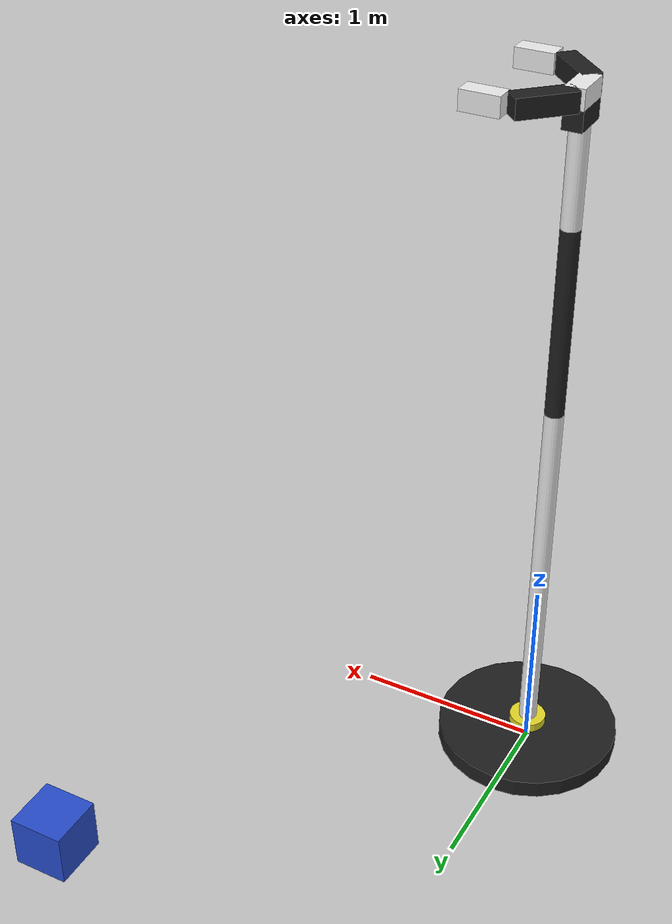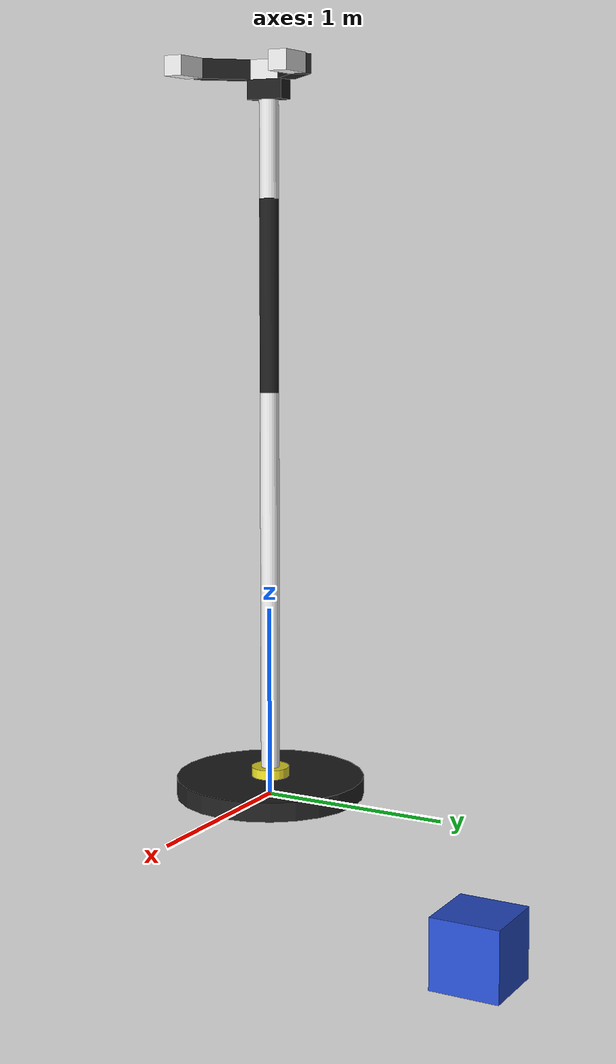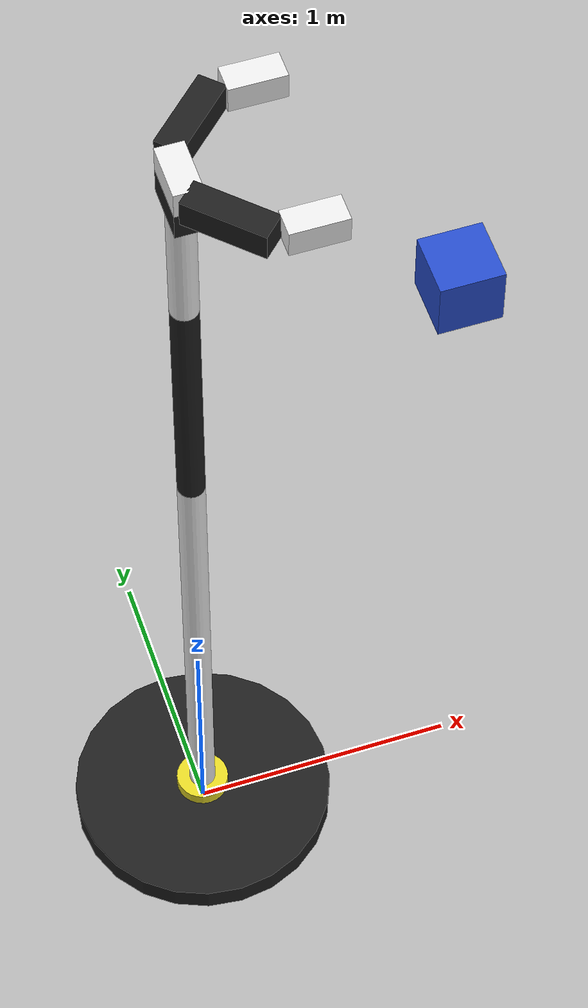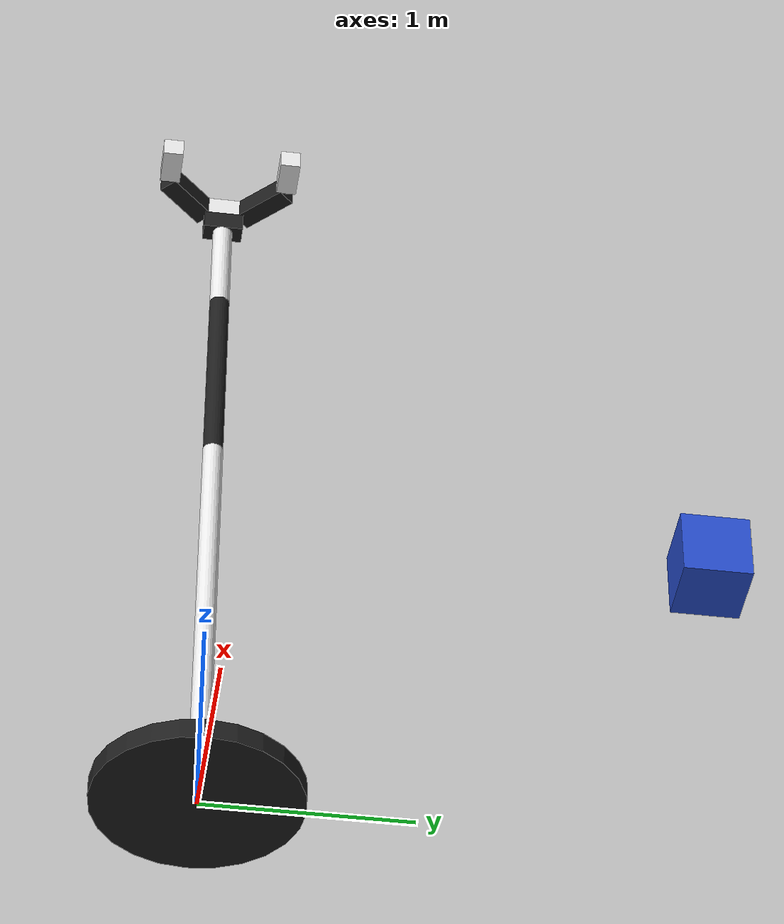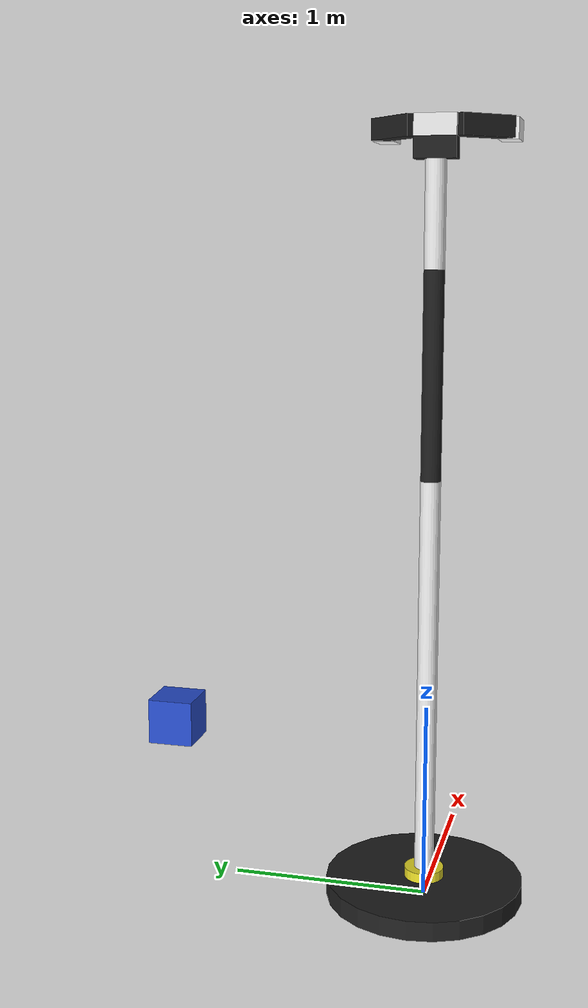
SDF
<?xml version='1.0'?>
<sdf version='1.4'>
    <model name="my_robot">
        <static>false</static>
        <self_collide>1</self_collide>
        <link name='chassis'>
            <pose>0 0 .05 0 0 0</pose>
            <inertial>
            <mass>100.0 </mass>
            </inertial>
            <collision name='collision'>
                <geometry>
                    <cylinder>
                        <radius>.5</radius>
                        <length>.1</length>
                    </cylinder>
                </geometry>
            </collision>

            <visual name='visual'>
                <geometry>
                    <cylinder>
                        <radius>.5</radius>
                        <length>.1</length>
                    </cylinder>
                </geometry>
                <material>
                    <script>
                        <name>
                            Gazebo/Black
                        </name>
                        <uri>file://media/materials/scripts/gazebo.material</uri>
                    </script>
                </material>
            </visual>
        </link>
        <link name='arm1'>
            <pose>0 0 .125 0 0 0</pose>
            <gravity> 0 </gravity>

            <inertial>
            <mass>50 </mass>
            </inertial>
            <collision name='collision'>
                <geometry>
                    <cylinder>
                        <radius>.1</radius>
                        <length>.05</length>
                    </cylinder>
                </geometry>
            </collision>

            <visual name='visual'>
                <geometry>
                    <cylinder>
                        <radius>.1</radius>
                        <length>.05</length>
                    </cylinder>
                </geometry>
                <material>
                    <script>
                        <name>
                            Gazebo/Yellow
                        </name>
                        <uri>file://media/materials/scripts/gazebo.material</uri>
                    </script>
                </material>
            </visual>
        </link>
        <link name='arm2'>
            <pose>0 0 1.15 0 0 0</pose>
           <gravity> 0 </gravity>
            <inertial>
            <mass>20 </mass>

            </inertial>

            <collision name='collision'>
                <geometry>
                    <cylinder>
                        <radius>.05</radius>
                        <length>2.0</length>
                    </cylinder>
                </geometry>
            </collision>

            <visual name='visual'>
                <geometry>
                    <cylinder>
                        <radius>.05</radius>
                        <length>2.0</length>
                    </cylinder>
                </geometry>
                <material>
                    <script>
                        <name>
                            Gazebo/white
                        </name>
                        <uri>file://media/materials/scripts/gazebo.material</uri>
                    </script>
                </material>
            </visual>
        </link>

        <link name='arm3'>
            <pose>0 0 2.65 0 0 0</pose>
            <inertial>
            <mass>1 </mass>
            </inertial>
            <collision name='collision'>
                <geometry>
                    <cylinder>
                        <radius>.05</radius>
                        <length>1.0</length>
                    </cylinder>
                </geometry>
            </collision>

            <visual name='visual'>
                <geometry>
                    <cylinder>
                        <radius>.05</radius>
                        <length>1</length>
                    </cylinder>
                </geometry>
                <material>
                    <script>
                        <name>
                            Gazebo/Black
                        </name>
                        <uri>file://media/materials/scripts/gazebo.material</uri>
                    </script>
                </material>
            </visual>
        </link>
        <link name='arm4'>
            <pose>0 0 3.4 0 0 0</pose>
            <gravity>0</gravity>
             <inertial>
            <mass>0.5 </mass>

            </inertial>

            <collision name='collision'>
                <geometry>
                    <cylinder>
                        <radius>.05</radius>
                        <length>.5</length>
                    </cylinder>
                </geometry>
            </collision>

            <visual name='visual'>
                <geometry>
                    <cylinder>
                        <radius>.05</radius>
                        <length>.5</length>
                    </cylinder>
                </geometry>
                <material>
                    <script>
                        <name>
                            Gazebo/white
                        </name>
                        <uri>file://media/materials/scripts/gazebo.material</uri>
                    </script>
                </material>
            </visual>
        </link>

        <link name="hand">
            <gravity>0</gravity>
            <pose>0.0 0.0 3.7 0 0 0</pose>
            <inertial>
                <inertia>
                    <ixx>0.01</ixx>
                    <ixy>0</ixy>
                    <ixz>0</ixz>
                    <iyy>0.01</iyy>
                    <iyz>0</iyz>
                    <izz>0.01</izz>
                </inertia>
                <mass>0.5</mass>
            </inertial>
            <collision name="collision">
                <geometry>
                    <box>
                        <size>0.1 0.2 0.1</size>
                    </box>
                </geometry>
            </collision>
            <visual name="visual">
                <geometry>
                    <box>
                        <size>0.1 0.2 0.1</size>
                    </box>
                </geometry>
                <material>
                    <script>
                        <name>Gazebo/Black</name>
                        <uri>file://media/materials/scripts/gazebo.material</uri>
                    </script>

                </material>
            </visual>
        </link>

        <link name="hand_joint">
            <gravity>0</gravity>
            <pose>0.0 0.0 3.8 0 0 0</pose>
            <collision name="collision">
                <geometry>
                    <box>
                        <size>0.1 0.2 0.1</size>
                    </box>
                </geometry>
            </collision>
            <visual name="visual">
                <geometry>
                    <box>
                        <size>0.1 0.2 0.1</size>
                    </box>
                </geometry>
                <material>
                    <script>
                        <name>
                            Gazebo/White
                        </name>
                        <uri>file://media/materials/scripts/gazebo.material</uri>
                    </script>
                </material>
            </visual>
        </link>
        <link name="left_hand">
            <self_collide>1</self_collide>
            <pose>0.1 0.2 3.8 0 0 -0.78539</pose>
            <inertial>
                <inertia>
                    <ixx>0.01</ixx>
                    <ixy>0</ixy>
                    <ixz>0</ixz>
                    <iyy>0.01</iyy>
                    <iyz>0</iyz>
                    <izz>0.01</izz>
                </inertia>
                <mass>0.1</mass>
            </inertial>
            <collision name="collision">
                <geometry>
                    <box>
                        <size>0.1 0.3 0.1</size>
                    </box>
                </geometry>
            </collision>
            <visual name="visual">
                <geometry>
                    <box>
                        <size>0.1 0.3 0.1</size>
                    </box>
                </geometry>
                <material>
                    <script>
                        <name>
                            Gazebo/Black
                        </name>
                        <uri>file://media/materials/scripts/gazebo.material</uri>
                    </script>
                </material>
            </visual>
        </link>
        <link name="left_hand_end">
            <self_collide>1</self_collide>
            <pose>0.336 0.3 3.8 0 0 1.5707</pose>
            <inertial>
                <inertia>
                    <ixx>0.01</ixx>
                    <ixy>0</ixy>
                    <ixz>0</ixz>
                    <iyy>0.01</iyy>
                    <iyz>0</iyz>
                    <izz>0.01</izz>
                </inertia>
                <mass>0.1</mass>
            </inertial>
            <collision name="collision">
                <geometry>
                    <box>
                        <size>0.1 0.2 0.1</size>
                    </box>
                </geometry>
            </collision>
            <visual name="visual">
                <geometry>
                    <box>
                        <size>0.1 0.2 0.1</size>
                    </box>
                </geometry>
                <material>
                    <script>
                        <name>
                            Gazebo/White
                        </name>
                        <uri>file://media/materials/scripts/gazebo.material</uri>
                    </script>
                </material>
            </visual>
        </link>
        <link name="right_hand">
            <self_collide>1</self_collide>
            <pose>0.1 -0.2 3.8 0 0 .78539</pose>
            <inertial>
                <inertia>
                    <ixx>0.01</ixx>
                    <ixy>0</ixy>
                    <ixz>0</ixz>
                    <iyy>0.01</iyy>
                    <iyz>0</iyz>
                    <izz>0.01</izz>
                </inertia>
                <mass>0.1</mass>
            </inertial>
            <collision name="collision">
                <geometry>
                    <box>
                        <size>0.1 0.3 0.1</size>
                    </box>
                </geometry>
            </collision>
            <visual name="visual">
                <geometry>
                    <box>
                        <size>0.1 0.3 0.1</size>
                    </box>
                </geometry>
                <material>
                    <script>
                        <name>
                            Gazebo/Black
                        </name>
                        <uri>file://media/materials/scripts/gazebo.material</uri>
                    </script>
                </material>
            </visual>
        </link>
        <link name="right_hand_end">
            <self_collide>1</self_collide>
            <pose>0.336 -0.3 3.8 0 0 1.5707</pose>
            <inertial>
                <inertia>
                    <ixx>0.01</ixx>
                    <ixy>0</ixy>
                    <ixz>0</ixz>
                    <iyy>0.01</iyy>
                    <iyz>0</iyz>
                    <izz>0.01</izz>
                </inertia>
                <mass>0.1</mass>
            </inertial>
            <collision name="collision">
                <geometry>
                    <box>
                        <size>0.1 0.2 0.1</size>
                    </box>
                </geometry>
            </collision>
            <visual name="visual">
                <geometry>
                    <box>
                        <size>0.1 0.2 0.1</size>
                    </box>
                </geometry>
                <material>
                    <script>
                        <name>
                            Gazebo/White
                        </name>
                        <uri>file://media/materials/scripts/gazebo.material</uri>
                    </script>
                </material>
            </visual>
        </link>
        <link name='box'>
            <self_collide>1</self_collide>
            <inertial>
                <mass>50.0</mass>
            </inertial>
            <pose>1.8 2 0.15 0 -0 0</pose>
            <collision name='collision'>
                <geometry>
                    <box>
                        <size>0.3 0.3 0.3</size>
                    </box>
                </geometry>
            </collision>
            <visual name='visual'>
                <geometry>
                    <box>
                        <size>0.3 0.3 0.3</size>
                    </box>
                </geometry>
                <material>
                    <script>
                        <name>Gazebo/Blue</name>
                        <uri>file://media/materials/scripts/gazebo.material</uri>
                    </script>
                </material>
            </visual>

        </link>

        <joint type="revolute" name="chasis_arm1_joint">
            <pose>0 0 -0.025 0 0 0</pose>
            <child>arm1</child>
            <parent>chassis</parent>
            <axis>
                <xyz>0 0 1</xyz>
                <dynamics>
               <damping> 1.0</damping>
               <friction>.3 </friction>
                </dynamics>

               <limit>
                <lower>-1.0 </lower>
                <upper>1.0 </upper>
                <effort> 40 </effort>
                <velocity>1.0 </velocity>
                </limit>
            </axis>
        </joint>

         <joint type="revolute" name="arm1_arm2_joint">
            <pose>0 0 -1 0 0 0</pose>
            <child>arm2</child>
            <parent>arm1</parent>
            <axis>
                <xyz>1 0 0</xyz>
            </axis>
        </joint>

   <joint type="revolute" name="arm2_arm3_joint">
            <pose>0 0 -0.5 0 0 0</pose>
            <child>arm3</child>
            <parent>arm2</parent>
            <axis>
                <xyz>1 0 0</xyz>
                <dynamics>
               <damping> 1.0</damping>
               <friction>.3 </friction>
                </dynamics>
               <limit>
                <lower>-1.0 </lower>
                <upper>1.0 </upper>
                <effort> 40 </effort>
                <velocity>1.0 </velocity>
                </limit>
            </axis>
        </joint>

         <joint type="revolute" name="arm3_arm4_joint">
            <pose>0 0 -0.25 0 0 0</pose>
            <child>arm4</child>
            <parent>arm3</parent>
            <axis>
                <xyz>1 0 0</xyz>
                <dynamics>
               <damping> 1.0</damping>
               <friction>.3 </friction>
                </dynamics>

               <limit>
                <lower>-1.0 </lower>
                <upper>1.0 </upper>
                <effort> 40 </effort>
                <velocity>1.0 </velocity>
                </limit>
            </axis>
        </joint>

        <joint name="arm4_hand_joint" type="revolute">
            <parent>
                arm4
            </parent>
            <child>
                hand
            </child>
            <pose>
                0 0 -0.05 0 0 0</pose>
            <axis>
                <xyz>
                    1 0 0
                </xyz>
                <dynamics>
                    <damping>
                        1.0</damping>
                    <friction>
                        0.3
                    </friction>

                </dynamics>

            </axis>
        </joint>
        <joint name="hand_joint" type="revolute">
            <parent>
                hand
            </parent>
            <child>
                hand_joint
            </child>
            <pose>
                0 0 -0.05 0 0 0</pose>
            <axis>
                <xyz>
                    0 0 1
                </xyz>
                <dynamics>
                    <damping>
                        1.0</damping>
                    <friction>
                        0.3
                    </friction>

                </dynamics>

            </axis>
        </joint>
        <joint name="hand_left_hand" type="revolute">
            <pose>0 -0.15 0 0 0 0</pose>
            <child>left_hand</child>
            <parent>hand_joint</parent>
            <axis>
                <limit>
                    <lower>-0.4</lower>
                    <upper>0.4</upper>
                </limit>
                <xyz>0 0 1</xyz>
            </axis>
        </joint>
        <joint name="left_hand_end_joint" type="revolute">
            <pose>0 0.1 0 0 0 0</pose>
            <child>left_hand_end</child>
            <parent>left_hand</parent>
            <axis>
                <limit>
                    <lower>-0.4</lower>
                    <upper>0.4</upper>
                </limit>
                <xyz>0 0 1</xyz>
            </axis>
        </joint>
        <joint name="hand_right_hand" type="revolute">
            <pose>0 0.15 0 0 0 0</pose>
            <child>right_hand</child>
            <parent>hand_joint</parent>
            <axis>
                <limit>
                    <lower>-0.4</lower>
                    <upper>0.4</upper>
                </limit>
                <xyz>0 0 1</xyz>
            </axis>
        </joint>
        <joint name="right_hand_end_joint" type="revolute">
            <pose>0 0.1 0 0 0 0</pose>
            <child>right_hand_end</child>
            <parent>right_hand</parent>
            <axis>
                <limit>
                    <lower>-0.4</lower>
                    <upper>0.4</upper>
                </limit>
                <xyz>0 0 1</xyz>
            </axis>
        </joint>

        <plugin name="arm_control" filename="libarm_gazebo.so" />

    </model>
</sdf>
